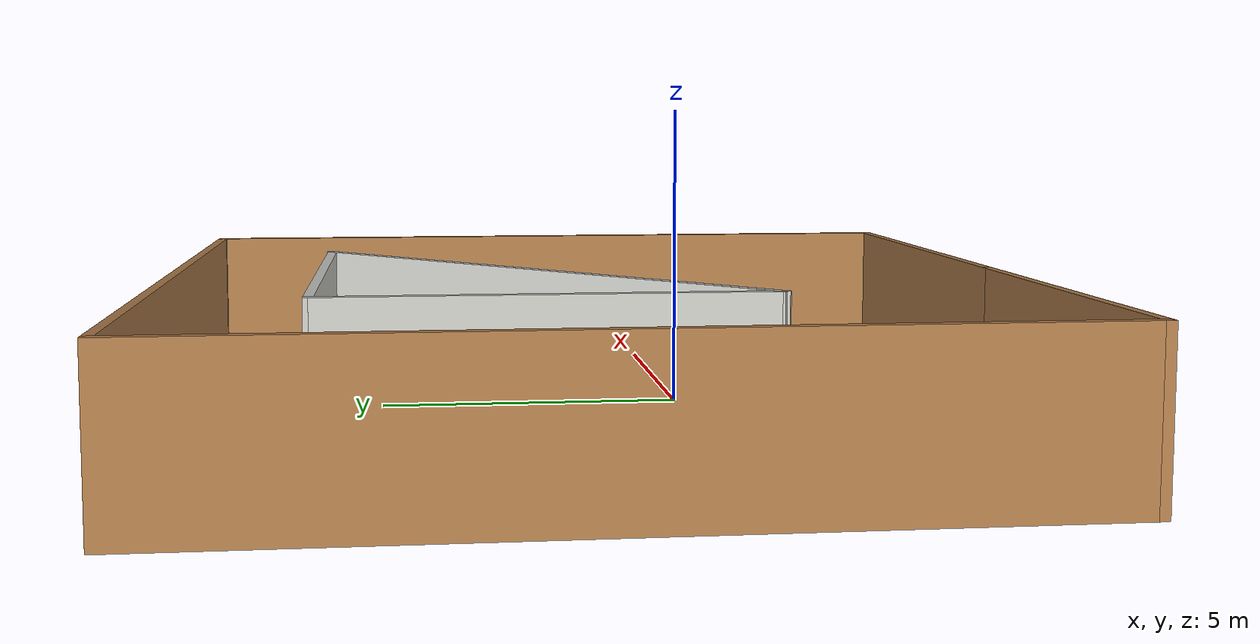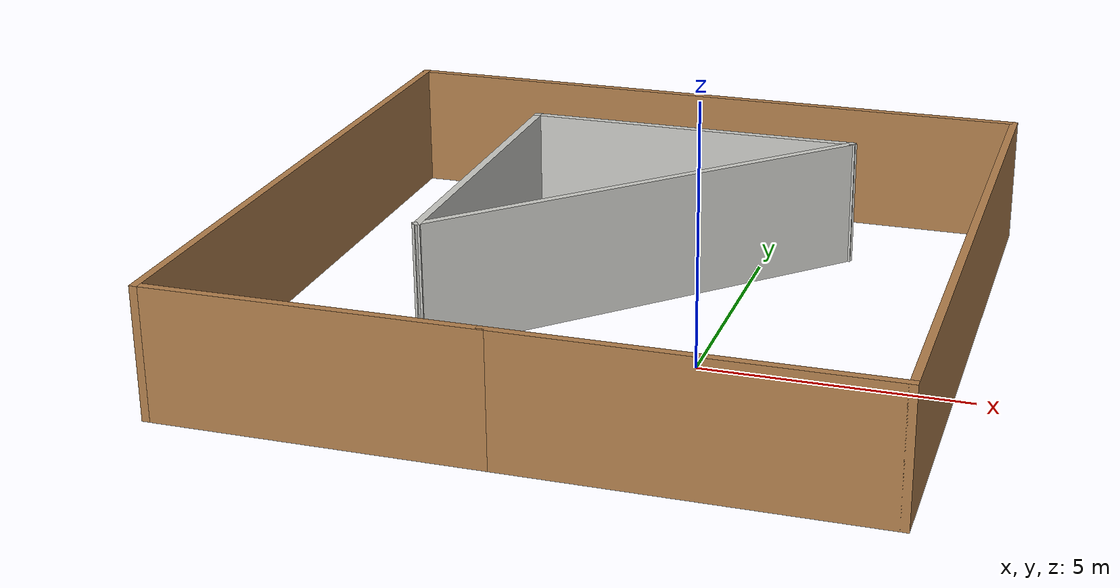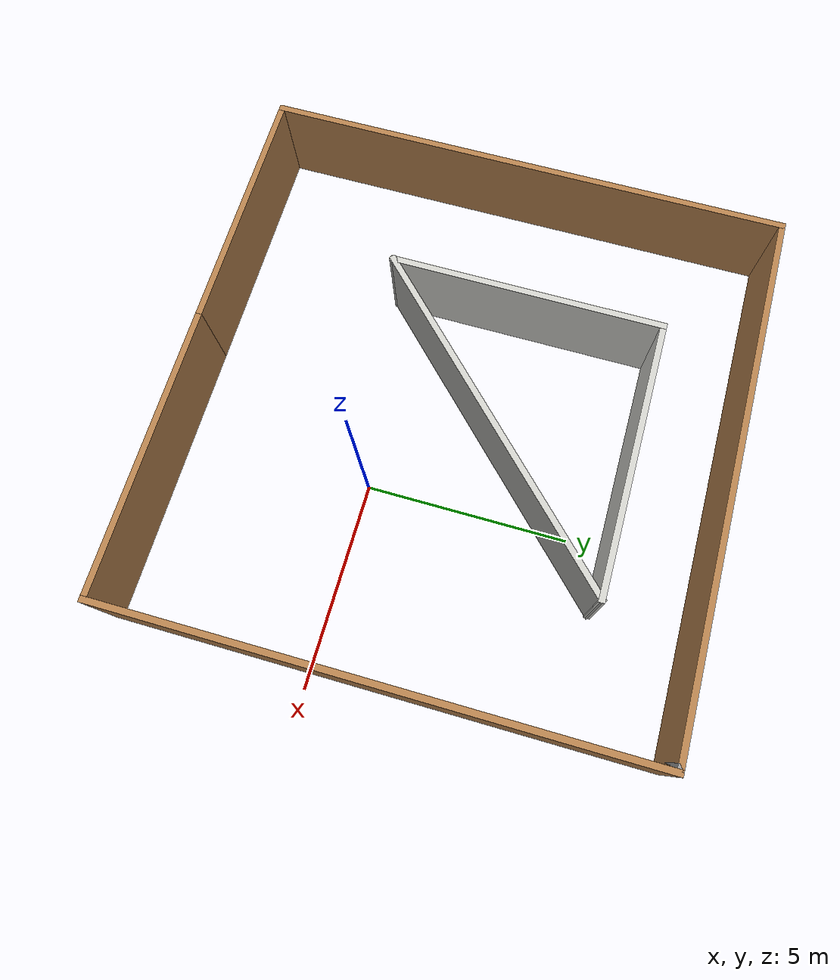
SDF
<?xml version='1.0'?>
<sdf version='1.7'>
  <model name='house'>
    <pose>-1.935 1.725 0 0 -0 0</pose>
    <link name='Wall_0'>
      <collision name='Wall_0_Collision'>
        <geometry>
          <box>
            <size>7 0.15 2.5</size>
          </box>
        </geometry>
        <pose>0 0 1.25 0 -0 0</pose>
      </collision>
      <visual name='Wall_0_Visual'>
        <pose>0 0 1.25 0 -0 0</pose>
        <geometry>
          <box>
            <size>7 0.15 2.5</size>
          </box>
        </geometry>
        <material>
          <script>
            <uri>file://media/materials/scripts/gazebo.material</uri>
            <name>Gazebo/Wood</name>
          </script>
          <ambient>1 1 1 1</ambient>
        </material>
        <meta>
          <layer>0</layer>
        </meta>
      </visual>
      <pose>3.05 -6.425 0 0 -0 0</pose>
    </link>
    <link name='Wall_13'>
      <collision name='Wall_13_Collision'>
        <geometry>
          <box>
            <size>6.25 0.15 2.5</size>
          </box>
        </geometry>
        <pose>0 0 1.25 0 -0 0</pose>
      </collision>
      <visual name='Wall_13_Visual'>
        <pose>0 0 1.25 0 -0 0</pose>
        <geometry>
          <box>
            <size>6.25 0.15 2.5</size>
          </box>
        </geometry>
        <material>
          <script>
            <uri>file://media/materials/scripts/gazebo.material</uri>
            <name>Gazebo/Wood</name>
          </script>
          <ambient>1 1 1 1</ambient>
        </material>
        <meta>
          <layer>0</layer>
        </meta>
      </visual>
      <pose>-3.425 -6.425 0 0 -0 3.14159</pose>
    </link>
    <link name='Wall_14'>
      <collision name='Wall_14_Collision'>
        <geometry>
          <box>
            <size>13 0.15 2.5</size>
          </box>
        </geometry>
        <pose>0 0 1.25 0 -0 0</pose>
      </collision>
      <visual name='Wall_14_Visual'>
        <pose>0 0 1.25 0 -0 0</pose>
        <geometry>
          <box>
            <size>13 0.15 2.5</size>
          </box>
        </geometry>
        <material>
          <script>
            <uri>file://media/materials/scripts/gazebo.material</uri>
            <name>Gazebo/Wood</name>
          </script>
          <ambient>1 1 1 1</ambient>
        </material>
        <meta>
          <layer>0</layer>
        </meta>
      </visual>
      <pose>-6.475 -0 0 0 -0 1.5708</pose>
    </link>
    <link name='Wall_15'>
      <collision name='Wall_15_Collision'>
        <geometry>
          <box>
            <size>13 0.15 2.5</size>
          </box>
        </geometry>
        <pose>0 0 1.25 0 -0 0</pose>
      </collision>
      <visual name='Wall_15_Visual'>
        <pose>0 0 1.25 0 -0 0</pose>
        <geometry>
          <box>
            <size>13 0.15 2.5</size>
          </box>
        </geometry>
        <material>
          <script>
            <uri>file://media/materials/scripts/gazebo.material</uri>
            <name>Gazebo/Wood</name>
          </script>
          <ambient>1 1 1 1</ambient>
        </material>
        <meta>
          <layer>0</layer>
        </meta>
      </visual>
      <pose>-0.05 6.425 0 0 -0 0</pose>
    </link>
    <link name='Wall_18'>
      <collision name='Wall_18_Collision'>
        <geometry>
          <box>
            <size>0.15 0.15 2.5</size>
          </box>
        </geometry>
        <pose>0 0 1.25 0 -0 0</pose>
      </collision>
      <visual name='Wall_18_Visual'>
        <pose>0 0 1.25 0 -0 0</pose>
        <geometry>
          <box>
            <size>0.15 0.15 2.5</size>
          </box>
        </geometry>
        <material>
          <script>
            <uri>file://media/materials/scripts/gazebo.material</uri>
            <name>Gazebo/Grey</name>
          </script>
          <ambient>1 1 1 1</ambient>
        </material>
        <meta>
          <layer>0</layer>
        </meta>
      </visual>
      <pose>6.375 6.425 0 0 -0 0</pose>
    </link>
    <link name='Wall_21'>
      <collision name='Wall_21_Collision'>
        <geometry>
          <box>
            <size>13 0.15 2.5</size>
          </box>
        </geometry>
        <pose>0 0 1.25 0 -0 0</pose>
      </collision>
      <visual name='Wall_21_Visual'>
        <pose>0 0 1.25 0 -0 0</pose>
        <geometry>
          <box>
            <size>13 0.15 2.5</size>
          </box>
        </geometry>
        <material>
          <script>
            <uri>file://media/materials/scripts/gazebo.material</uri>
            <name>Gazebo/Wood</name>
          </script>
          <ambient>1 1 1 1</ambient>
        </material>
        <meta>
          <layer>0</layer>
        </meta>
      </visual>
      <pose>6.475 -0 0 0 -0 1.5708</pose>
    </link>
    <link name='Wall_24'>
      <collision name='Wall_24_Collision'>
        <geometry>
          <box>
            <size>9.5 0.15 2.5</size>
          </box>
        </geometry>
        <pose>0 0 1.25 0 -0 0</pose>
      </collision>
      <visual name='Wall_24_Visual'>
        <pose>0 0 1.25 0 -0 0</pose>
        <geometry>
          <box>
            <size>9.5 0.15 2.5</size>
          </box>
        </geometry>
        <material>
          <script>
            <uri>file://media/materials/scripts/gazebo.material</uri>
            <name>Gazebo/CeilingTiled</name>
          </script>
          <ambient>1 1 1 1</ambient>
        </material>
        <meta>
          <layer>0</layer>
        </meta>
      </visual>
      <pose>0.227105 0.867211 0 0 -0 0.785398</pose>
    </link>
    <link name='Wall_25'>
      <collision name='Wall_25_Collision'>
        <geometry>
          <box>
            <size>6.75 0.15 2.5</size>
          </box>
        </geometry>
        <pose>0 0 1.25 0 -0 0</pose>
      </collision>
      <visual name='Wall_25_Visual'>
        <pose>0 0 1.25 0 -0 0</pose>
        <geometry>
          <box>
            <size>6.75 0.15 2.5</size>
          </box>
        </geometry>
        <material>
          <script>
            <uri>file://media/materials/scripts/gazebo.material</uri>
            <name>Gazebo/CeilingTiled</name>
          </script>
          <ambient>1 1 1 1</ambient>
        </material>
        <meta>
          <layer>0</layer>
        </meta>
      </visual>
      <pose>0.232829 4.17293 0 0 -0 3.14159</pose>
    </link>
    <link name='Wall_27'>
      <collision name='Wall_27_Collision'>
        <geometry>
          <box>
            <size>6.76146 0.15 2.5</size>
          </box>
        </geometry>
        <pose>0 0 1.25 0 -0 0</pose>
      </collision>
      <visual name='Wall_27_Visual'>
        <pose>0 0 1.25 0 -0 0</pose>
        <geometry>
          <box>
            <size>6.76146 0.15 2.5</size>
          </box>
        </geometry>
        <material>
          <script>
            <uri>file://media/materials/scripts/gazebo.material</uri>
            <name>Gazebo/CeilingTiled</name>
          </script>
          <ambient>1 1 1 1</ambient>
        </material>
        <meta>
          <layer>0</layer>
        </meta>
      </visual>
      <pose>-3.0729 0.867211 0 0 -0 -1.57253</pose>
    </link>
    <static>1</static>
  </model>
</sdf>
